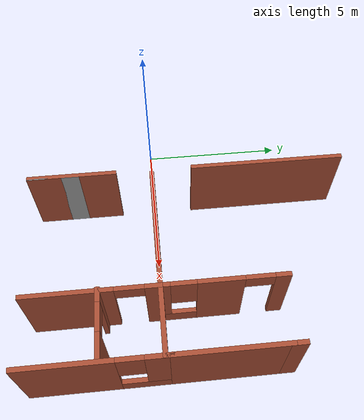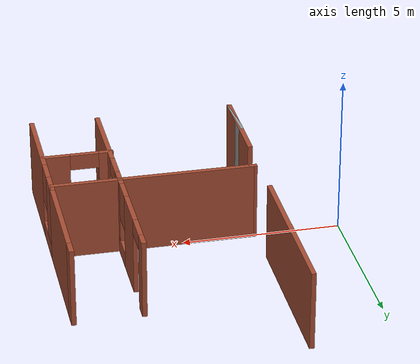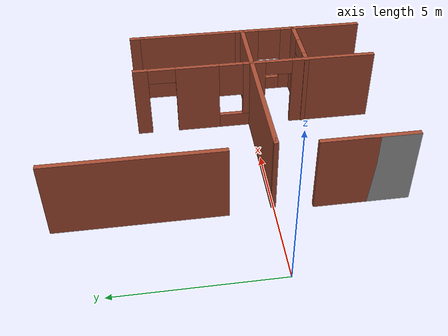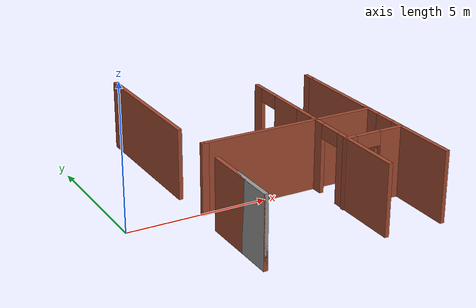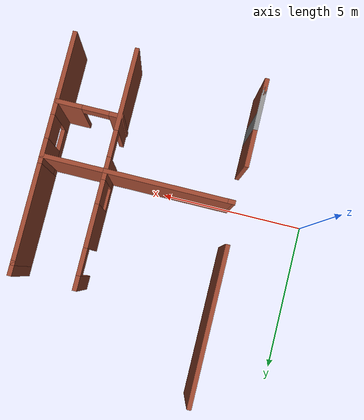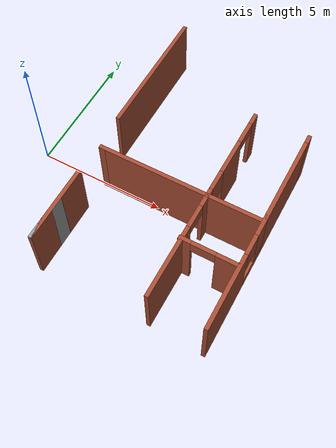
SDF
<sdf version="1.7">
 <model name="my_test_world">
  <link name="Wall_13">
   <pose>9.04901 -1.97818 0 0 -0 1.5708</pose>
   <visual name="Wall_13_Visual_0">
    <pose>-0.820674 0 1.25 0 -0 0</pose>
    <geometry><box><size>2.85865 0.15 2.5</size></box></geometry>
    <material>
     <script><uri>file://media/materials/scripts/gazebo.material</uri><name>Gazebo/Bricks</name></script>
     <ambient>1 1 1 1</ambient>
     <shader type="pixel"/>
    </material>
    <meta><layer>0</layer></meta>
   </visual>
   <visual name="Wall_13_Visual_1">
    <pose>1.42933 0 0.25 0 -0 0</pose>
    <geometry><box><size>1.64135 0.15 0.5</size></box></geometry>
    <material>
     <script><uri>file://media/materials/scripts/gazebo.material</uri><name>Gazebo/Bricks</name></script>
     <ambient>1 1 1 1</ambient>
     <shader type="pixel"/>
    </material>
    <meta><layer>0</layer></meta>
   </visual>
   <visual name="Wall_13_Visual_2">
    <pose>1.82933 0 1.5 0 -0 0</pose>
    <geometry><box><size>0.841349 0.15 2</size></box></geometry>
    <material>
     <script><uri>file://media/materials/scripts/gazebo.material</uri><name>Gazebo/Bricks</name></script>
     <ambient>1 1 1 1</ambient>
     <shader type="pixel"/>
    </material>
    <meta><layer>0</layer></meta>
   </visual>
   <visual name="Wall_13_Visual_3">
    <pose>1.00865 0 1.9 0 -0 0</pose>
    <geometry><box><size>0.8 0.15 1.2</size></box></geometry>
    <material>
     <script><uri>file://media/materials/scripts/gazebo.material</uri><name>Gazebo/Bricks</name></script>
     <ambient>1 1 1 1</ambient>
     <shader type="pixel"/>
    </material>
    <meta><layer>0</layer></meta>
   </visual>
   <collision name="Wall_13_Collision_0">
    <pose>-0.820674 0 1.25 0 -0 0</pose>
    <geometry><box><size>2.85865 0.15 2.5</size></box></geometry>
    <surface>
     <friction>
      <ode><mu>1</mu><mu2>1</mu2><fdir1>0 0 0</fdir1><slip1>0</slip1><slip2>0</slip2></ode>
      <torsional>
       <coefficient>1</coefficient>
       <patch_radius>0</patch_radius>
       <surface_radius>0</surface_radius>
       <use_patch_radius>1</use_patch_radius>
       <ode><slip>0</slip></ode>
      </torsional>
     </friction>
     <bounce><restitution_coefficient>0</restitution_coefficient><threshold>1e+06</threshold></bounce>
     <contact>
      <collide_without_contact>0</collide_without_contact>
      <collide_without_contact_bitmask>1</collide_without_contact_bitmask>
      <collide_bitmask>1</collide_bitmask>
      <ode>
       <soft_cfm>0</soft_cfm>
       <soft_erp>0.2</soft_erp>
       <kp>1e+13</kp>
       <kd>1</kd>
       <max_vel>0.01</max_vel>
       <min_depth>0</min_depth>
      </ode>
      <bullet>
       <split_impulse>1</split_impulse>
       <split_impulse_penetration_threshold>-0.01</split_impulse_penetration_threshold>
       <soft_cfm>0</soft_cfm>
       <soft_erp>0.2</soft_erp>
       <kp>1e+13</kp>
       <kd>1</kd>
      </bullet>
     </contact>
    </surface>
   </collision>
   <collision name="Wall_13_Collision_1">
    <pose>1.42933 0 0.25 0 -0 0</pose>
    <geometry><box><size>1.64135 0.15 0.5</size></box></geometry>
    <surface>
     <friction>
      <ode><mu>1</mu><mu2>1</mu2><fdir1>0 0 0</fdir1><slip1>0</slip1><slip2>0</slip2></ode>
      <torsional>
       <coefficient>1</coefficient>
       <patch_radius>0</patch_radius>
       <surface_radius>0</surface_radius>
       <use_patch_radius>1</use_patch_radius>
       <ode><slip>0</slip></ode>
      </torsional>
     </friction>
     <bounce><restitution_coefficient>0</restitution_coefficient><threshold>1e+06</threshold></bounce>
     <contact>
      <collide_without_contact>0</collide_without_contact>
      <collide_without_contact_bitmask>1</collide_without_contact_bitmask>
      <collide_bitmask>1</collide_bitmask>
      <ode>
       <soft_cfm>0</soft_cfm>
       <soft_erp>0.2</soft_erp>
       <kp>1e+13</kp>
       <kd>1</kd>
       <max_vel>0.01</max_vel>
       <min_depth>0</min_depth>
      </ode>
      <bullet>
       <split_impulse>1</split_impulse>
       <split_impulse_penetration_threshold>-0.01</split_impulse_penetration_threshold>
       <soft_cfm>0</soft_cfm>
       <soft_erp>0.2</soft_erp>
       <kp>1e+13</kp>
       <kd>1</kd>
      </bullet>
     </contact>
    </surface>
   </collision>
   <collision name="Wall_13_Collision_2">
    <pose>1.82933 0 1.5 0 -0 0</pose>
    <geometry><box><size>0.841349 0.15 2</size></box></geometry>
    <surface>
     <friction>
      <ode><mu>1</mu><mu2>1</mu2><fdir1>0 0 0</fdir1><slip1>0</slip1><slip2>0</slip2></ode>
      <torsional>
       <coefficient>1</coefficient>
       <patch_radius>0</patch_radius>
       <surface_radius>0</surface_radius>
       <use_patch_radius>1</use_patch_radius>
       <ode><slip>0</slip></ode>
      </torsional>
     </friction>
     <bounce><restitution_coefficient>0</restitution_coefficient><threshold>1e+06</threshold></bounce>
     <contact>
      <collide_without_contact>0</collide_without_contact>
      <collide_without_contact_bitmask>1</collide_without_contact_bitmask>
      <collide_bitmask>1</collide_bitmask>
      <ode>
       <soft_cfm>0</soft_cfm>
       <soft_erp>0.2</soft_erp>
       <kp>1e+13</kp>
       <kd>1</kd>
       <max_vel>0.01</max_vel>
       <min_depth>0</min_depth>
      </ode>
      <bullet>
       <split_impulse>1</split_impulse>
       <split_impulse_penetration_threshold>-0.01</split_impulse_penetration_threshold>
       <soft_cfm>0</soft_cfm>
       <soft_erp>0.2</soft_erp>
       <kp>1e+13</kp>
       <kd>1</kd>
      </bullet>
     </contact>
    </surface>
   </collision>
   <collision name="Wall_13_Collision_3">
    <pose>1.00865 0 1.9 0 -0 0</pose>
    <geometry><box><size>0.8 0.15 1.2</size></box></geometry>
    <surface>
     <friction>
      <ode><mu>1</mu><mu2>1</mu2><fdir1>0 0 0</fdir1><slip1>0</slip1><slip2>0</slip2></ode>
      <torsional>
       <coefficient>1</coefficient>
       <patch_radius>0</patch_radius>
       <surface_radius>0</surface_radius>
       <use_patch_radius>1</use_patch_radius>
       <ode><slip>0</slip></ode>
      </torsional>
     </friction>
     <bounce><restitution_coefficient>0</restitution_coefficient><threshold>1e+06</threshold></bounce>
     <contact>
      <collide_without_contact>0</collide_without_contact>
      <collide_without_contact_bitmask>1</collide_without_contact_bitmask>
      <collide_bitmask>1</collide_bitmask>
      <ode>
       <soft_cfm>0</soft_cfm>
       <soft_erp>0.2</soft_erp>
       <kp>1e+13</kp>
       <kd>1</kd>
       <max_vel>0.01</max_vel>
       <min_depth>0</min_depth>
      </ode>
      <bullet>
       <split_impulse>1</split_impulse>
       <split_impulse_penetration_threshold>-0.01</split_impulse_penetration_threshold>
       <soft_cfm>0</soft_cfm>
       <soft_erp>0.2</soft_erp>
       <kp>1e+13</kp>
       <kd>1</kd>
      </bullet>
     </contact>
    </surface>
   </collision>
  </link>
  <link name="Wall_21">
   <pose>6.94083 1.93273 0 0 0 -1.5708</pose>
   <visual name="Wall_21_Visual_0">
    <pose>-1.75506 0 1.25 0 -0 0</pose>
    <geometry><box><size>0.489884 0.15 2.5</size></box></geometry>
    <material>
     <script><uri>file://media/materials/scripts/gazebo.material</uri><name>Gazebo/Bricks</name></script>
     <ambient>1 1 1 1</ambient>
     <shader type="pixel"/>
    </material>
    <meta><layer>0</layer></meta>
   </visual>
   <visual name="Wall_21_Visual_1">
    <pose>0.111357 0 1.25 0 -0 0</pose>
    <geometry><box><size>1.44295 0.15 2.5</size></box></geometry>
    <material>
     <script><uri>file://media/materials/scripts/gazebo.material</uri><name>Gazebo/Bricks</name></script>
     <ambient>1 1 1 1</ambient>
     <shader type="pixel"/>
    </material>
    <meta><layer>0</layer></meta>
   </visual>
   <visual name="Wall_21_Visual_2">
    <pose>1.41641 0 0.25 0 -0 0</pose>
    <geometry><box><size>1.16717 0.15 0.5</size></box></geometry>
    <material>
     <script><uri>file://media/materials/scripts/gazebo.material</uri><name>Gazebo/Bricks</name></script>
     <ambient>1 1 1 1</ambient>
     <shader type="pixel"/>
    </material>
    <meta><layer>0</layer></meta>
   </visual>
   <visual name="Wall_21_Visual_3">
    <pose>1.81641 0 1.5 0 -0 0</pose>
    <geometry><box><size>0.367169 0.15 2</size></box></geometry>
    <material>
     <script><uri>file://media/materials/scripts/gazebo.material</uri><name>Gazebo/Bricks</name></script>
     <ambient>1 1 1 1</ambient>
     <shader type="pixel"/>
    </material>
    <meta><layer>0</layer></meta>
   </visual>
   <visual name="Wall_21_Visual_4">
    <pose>1.23283 0 1.9 0 -0 0</pose>
    <geometry><box><size>0.8 0.15 1.2</size></box></geometry>
    <material>
     <script><uri>file://media/materials/scripts/gazebo.material</uri><name>Gazebo/Bricks</name></script>
     <ambient>1 1 1 1</ambient>
     <shader type="pixel"/>
    </material>
    <meta><layer>0</layer></meta>
   </visual>
   <visual name="Wall_21_Visual_5">
    <pose>-1.06012 0 2.25 0 -0 0</pose>
    <geometry><box><size>0.9 0.15 0.5</size></box></geometry>
    <material>
     <script><uri>file://media/materials/scripts/gazebo.material</uri><name>Gazebo/Bricks</name></script>
     <ambient>1 1 1 1</ambient>
     <shader type="pixel"/>
    </material>
    <meta><layer>0</layer></meta>
   </visual>
   <collision name="Wall_21_Collision_0">
    <pose>-1.75506 0 1.25 0 -0 0</pose>
    <geometry><box><size>0.489884 0.15 2.5</size></box></geometry>
    <surface>
     <friction>
      <ode><mu>1</mu><mu2>1</mu2><fdir1>0 0 0</fdir1><slip1>0</slip1><slip2>0</slip2></ode>
      <torsional>
       <coefficient>1</coefficient>
       <patch_radius>0</patch_radius>
       <surface_radius>0</surface_radius>
       <use_patch_radius>1</use_patch_radius>
       <ode><slip>0</slip></ode>
      </torsional>
     </friction>
     <bounce><restitution_coefficient>0</restitution_coefficient><threshold>1e+06</threshold></bounce>
     <contact>
      <collide_without_contact>0</collide_without_contact>
      <collide_without_contact_bitmask>1</collide_without_contact_bitmask>
      <collide_bitmask>1</collide_bitmask>
      <ode>
       <soft_cfm>0</soft_cfm>
       <soft_erp>0.2</soft_erp>
       <kp>1e+13</kp>
       <kd>1</kd>
       <max_vel>0.01</max_vel>
       <min_depth>0</min_depth>
      </ode>
      <bullet>
       <split_impulse>1</split_impulse>
       <split_impulse_penetration_threshold>-0.01</split_impulse_penetration_threshold>
       <soft_cfm>0</soft_cfm>
       <soft_erp>0.2</soft_erp>
       <kp>1e+13</kp>
       <kd>1</kd>
      </bullet>
     </contact>
    </surface>
   </collision>
   <collision name="Wall_21_Collision_1">
    <pose>0.111357 0 1.25 0 -0 0</pose>
    <geometry><box><size>1.44295 0.15 2.5</size></box></geometry>
    <surface>
     <friction>
      <ode><mu>1</mu><mu2>1</mu2><fdir1>0 0 0</fdir1><slip1>0</slip1><slip2>0</slip2></ode>
      <torsional>
       <coefficient>1</coefficient>
       <patch_radius>0</patch_radius>
       <surface_radius>0</surface_radius>
       <use_patch_radius>1</use_patch_radius>
       <ode><slip>0</slip></ode>
      </torsional>
     </friction>
     <bounce><restitution_coefficient>0</restitution_coefficient><threshold>1e+06</threshold></bounce>
     <contact>
      <collide_without_contact>0</collide_without_contact>
      <collide_without_contact_bitmask>1</collide_without_contact_bitmask>
      <collide_bitmask>1</collide_bitmask>
      <ode>
       <soft_cfm>0</soft_cfm>
       <soft_erp>0.2</soft_erp>
       <kp>1e+13</kp>
       <kd>1</kd>
       <max_vel>0.01</max_vel>
       <min_depth>0</min_depth>
      </ode>
      <bullet>
       <split_impulse>1</split_impulse>
       <split_impulse_penetration_threshold>-0.01</split_impulse_penetration_threshold>
       <soft_cfm>0</soft_cfm>
       <soft_erp>0.2</soft_erp>
       <kp>1e+13</kp>
       <kd>1</kd>
      </bullet>
     </contact>
    </surface>
   </collision>
   <collision name="Wall_21_Collision_2">
    <pose>1.41641 0 0.25 0 -0 0</pose>
    <geometry><box><size>1.16717 0.15 0.5</size></box></geometry>
    <surface>
     <friction>
      <ode><mu>1</mu><mu2>1</mu2><fdir1>0 0 0</fdir1><slip1>0</slip1><slip2>0</slip2></ode>
      <torsional>
       <coefficient>1</coefficient>
       <patch_radius>0</patch_radius>
       <surface_radius>0</surface_radius>
       <use_patch_radius>1</use_patch_radius>
       <ode><slip>0</slip></ode>
      </torsional>
     </friction>
     <bounce><restitution_coefficient>0</restitution_coefficient><threshold>1e+06</threshold></bounce>
     <contact>
      <collide_without_contact>0</collide_without_contact>
      <collide_without_contact_bitmask>1</collide_without_contact_bitmask>
      <collide_bitmask>1</collide_bitmask>
      <ode>
       <soft_cfm>0</soft_cfm>
       <soft_erp>0.2</soft_erp>
       <kp>1e+13</kp>
       <kd>1</kd>
       <max_vel>0.01</max_vel>
       <min_depth>0</min_depth>
      </ode>
      <bullet>
       <split_impulse>1</split_impulse>
       <split_impulse_penetration_threshold>-0.01</split_impulse_penetration_threshold>
       <soft_cfm>0</soft_cfm>
       <soft_erp>0.2</soft_erp>
       <kp>1e+13</kp>
       <kd>1</kd>
      </bullet>
     </contact>
    </surface>
   </collision>
   <collision name="Wall_21_Collision_3">
    <pose>1.81641 0 1.5 0 -0 0</pose>
    <geometry><box><size>0.367169 0.15 2</size></box></geometry>
    <surface>
     <friction>
      <ode><mu>1</mu><mu2>1</mu2><fdir1>0 0 0</fdir1><slip1>0</slip1><slip2>0</slip2></ode>
      <torsional>
       <coefficient>1</coefficient>
       <patch_radius>0</patch_radius>
       <surface_radius>0</surface_radius>
       <use_patch_radius>1</use_patch_radius>
       <ode><slip>0</slip></ode>
      </torsional>
     </friction>
     <bounce><restitution_coefficient>0</restitution_coefficient><threshold>1e+06</threshold></bounce>
     <contact>
      <collide_without_contact>0</collide_without_contact>
      <collide_without_contact_bitmask>1</collide_without_contact_bitmask>
      <collide_bitmask>1</collide_bitmask>
      <ode>
       <soft_cfm>0</soft_cfm>
       <soft_erp>0.2</soft_erp>
       <kp>1e+13</kp>
       <kd>1</kd>
       <max_vel>0.01</max_vel>
       <min_depth>0</min_depth>
      </ode>
      <bullet>
       <split_impulse>1</split_impulse>
       <split_impulse_penetration_threshold>-0.01</split_impulse_penetration_threshold>
       <soft_cfm>0</soft_cfm>
       <soft_erp>0.2</soft_erp>
       <kp>1e+13</kp>
       <kd>1</kd>
      </bullet>
     </contact>
    </surface>
   </collision>
   <collision name="Wall_21_Collision_4">
    <pose>1.23283 0 1.9 0 -0 0</pose>
    <geometry><box><size>0.8 0.15 1.2</size></box></geometry>
    <surface>
     <friction>
      <ode><mu>1</mu><mu2>1</mu2><fdir1>0 0 0</fdir1><slip1>0</slip1><slip2>0</slip2></ode>
      <torsional>
       <coefficient>1</coefficient>
       <patch_radius>0</patch_radius>
       <surface_radius>0</surface_radius>
       <use_patch_radius>1</use_patch_radius>
       <ode><slip>0</slip></ode>
      </torsional>
     </friction>
     <bounce><restitution_coefficient>0</restitution_coefficient><threshold>1e+06</threshold></bounce>
     <contact>
      <collide_without_contact>0</collide_without_contact>
      <collide_without_contact_bitmask>1</collide_without_contact_bitmask>
      <collide_bitmask>1</collide_bitmask>
      <ode>
       <soft_cfm>0</soft_cfm>
       <soft_erp>0.2</soft_erp>
       <kp>1e+13</kp>
       <kd>1</kd>
       <max_vel>0.01</max_vel>
       <min_depth>0</min_depth>
      </ode>
      <bullet>
       <split_impulse>1</split_impulse>
       <split_impulse_penetration_threshold>-0.01</split_impulse_penetration_threshold>
       <soft_cfm>0</soft_cfm>
       <soft_erp>0.2</soft_erp>
       <kp>1e+13</kp>
       <kd>1</kd>
      </bullet>
     </contact>
    </surface>
   </collision>
   <collision name="Wall_21_Collision_5">
    <pose>-1.06012 0 2.25 0 -0 0</pose>
    <geometry><box><size>0.9 0.15 0.5</size></box></geometry>
    <surface>
     <friction>
      <ode><mu>1</mu><mu2>1</mu2><fdir1>0 0 0</fdir1><slip1>0</slip1><slip2>0</slip2></ode>
      <torsional>
       <coefficient>1</coefficient>
       <patch_radius>0</patch_radius>
       <surface_radius>0</surface_radius>
       <use_patch_radius>1</use_patch_radius>
       <ode><slip>0</slip></ode>
      </torsional>
     </friction>
     <bounce><restitution_coefficient>0</restitution_coefficient><threshold>1e+06</threshold></bounce>
     <contact>
      <collide_without_contact>0</collide_without_contact>
      <collide_without_contact_bitmask>1</collide_without_contact_bitmask>
      <collide_bitmask>1</collide_bitmask>
      <ode>
       <soft_cfm>0</soft_cfm>
       <soft_erp>0.2</soft_erp>
       <kp>1e+13</kp>
       <kd>1</kd>
       <max_vel>0.01</max_vel>
       <min_depth>0</min_depth>
      </ode>
      <bullet>
       <split_impulse>1</split_impulse>
       <split_impulse_penetration_threshold>-0.01</split_impulse_penetration_threshold>
       <soft_cfm>0</soft_cfm>
       <soft_erp>0.2</soft_erp>
       <kp>1e+13</kp>
       <kd>1</kd>
      </bullet>
     </contact>
    </surface>
   </collision>
  </link>
  <link name="Wall_22">
   <pose>7.99083 0.007727 0 0 -0 0</pose>
   <visual name="Wall_22_Visual">
    <pose>0 0 1.25 0 -0 0</pose>
    <geometry><box><size>2.25 0.15 2.5</size></box></geometry>
    <material>
     <script><uri>file://media/materials/scripts/gazebo.material</uri><name>Gazebo/Bricks</name></script>
     <ambient>1 1 1 1</ambient>
     <shader type="pixel"/>
    </material>
    <meta><layer>0</layer></meta>
   </visual>
   <collision name="Wall_22_Collision">
    <pose>0 0 1.25 0 -0 0</pose>
    <geometry><box><size>2.25 0.15 2.5</size></box></geometry>
    <surface>
     <friction>
      <ode><mu>1</mu><mu2>1</mu2><fdir1>0 0 0</fdir1><slip1>0</slip1><slip2>0</slip2></ode>
      <torsional>
       <coefficient>1</coefficient>
       <patch_radius>0</patch_radius>
       <surface_radius>0</surface_radius>
       <use_patch_radius>1</use_patch_radius>
       <ode><slip>0</slip></ode>
      </torsional>
     </friction>
     <bounce><restitution_coefficient>0</restitution_coefficient><threshold>1e+06</threshold></bounce>
     <contact>
      <collide_without_contact>0</collide_without_contact>
      <collide_without_contact_bitmask>1</collide_without_contact_bitmask>
      <collide_bitmask>1</collide_bitmask>
      <ode>
       <soft_cfm>0</soft_cfm>
       <soft_erp>0.2</soft_erp>
       <kp>1e+13</kp>
       <kd>1</kd>
       <max_vel>0.01</max_vel>
       <min_depth>0</min_depth>
      </ode>
      <bullet>
       <split_impulse>1</split_impulse>
       <split_impulse_penetration_threshold>-0.01</split_impulse_penetration_threshold>
       <soft_cfm>0</soft_cfm>
       <soft_erp>0.2</soft_erp>
       <kp>1e+13</kp>
       <kd>1</kd>
      </bullet>
     </contact>
    </surface>
   </collision>
  </link>
  <link name="Wall_30">
   <pose>6.94083 -2.04227 0 0 0 -1.5708</pose>
   <visual name="Wall_30_Visual_0">
    <pose>-1.85404 0 1.25 0 -0 0</pose>
    <geometry><box><size>0.541917 0.15 2.5</size></box></geometry>
    <material>
     <script><uri>file://media/materials/scripts/gazebo.material</uri><name>Gazebo/Bricks</name></script>
     <ambient>1 1 1 1</ambient>
     <shader type="pixel"/>
    </material>
    <meta><layer>0</layer></meta>
   </visual>
   <visual name="Wall_30_Visual_1">
    <pose>0.720958 0 1.25 0 -0 0</pose>
    <geometry><box><size>2.80808 0.15 2.5</size></box></geometry>
    <material>
     <script><uri>file://media/materials/scripts/gazebo.material</uri><name>Gazebo/Bricks</name></script>
     <ambient>1 1 1 1</ambient>
     <shader type="pixel"/>
    </material>
    <meta><layer>0</layer></meta>
   </visual>
   <visual name="Wall_30_Visual_2">
    <pose>-1.13308 0 2.25 0 -0 0</pose>
    <geometry><box><size>0.9 0.15 0.5</size></box></geometry>
    <material>
     <script><uri>file://media/materials/scripts/gazebo.material</uri><name>Gazebo/Bricks</name></script>
     <ambient>1 1 1 1</ambient>
     <shader type="pixel"/>
    </material>
    <meta><layer>0</layer></meta>
   </visual>
   <collision name="Wall_30_Collision_0">
    <pose>-1.85404 0 1.25 0 -0 0</pose>
    <geometry><box><size>0.541917 0.15 2.5</size></box></geometry>
    <surface>
     <friction>
      <ode><mu>1</mu><mu2>1</mu2><fdir1>0 0 0</fdir1><slip1>0</slip1><slip2>0</slip2></ode>
      <torsional>
       <coefficient>1</coefficient>
       <patch_radius>0</patch_radius>
       <surface_radius>0</surface_radius>
       <use_patch_radius>1</use_patch_radius>
       <ode><slip>0</slip></ode>
      </torsional>
     </friction>
     <bounce><restitution_coefficient>0</restitution_coefficient><threshold>1e+06</threshold></bounce>
     <contact>
      <collide_without_contact>0</collide_without_contact>
      <collide_without_contact_bitmask>1</collide_without_contact_bitmask>
      <collide_bitmask>1</collide_bitmask>
      <ode>
       <soft_cfm>0</soft_cfm>
       <soft_erp>0.2</soft_erp>
       <kp>1e+13</kp>
       <kd>1</kd>
       <max_vel>0.01</max_vel>
       <min_depth>0</min_depth>
      </ode>
      <bullet>
       <split_impulse>1</split_impulse>
       <split_impulse_penetration_threshold>-0.01</split_impulse_penetration_threshold>
       <soft_cfm>0</soft_cfm>
       <soft_erp>0.2</soft_erp>
       <kp>1e+13</kp>
       <kd>1</kd>
      </bullet>
     </contact>
    </surface>
   </collision>
   <collision name="Wall_30_Collision_1">
    <pose>0.720958 0 1.25 0 -0 0</pose>
    <geometry><box><size>2.80808 0.15 2.5</size></box></geometry>
    <surface>
     <friction>
      <ode><mu>1</mu><mu2>1</mu2><fdir1>0 0 0</fdir1><slip1>0</slip1><slip2>0</slip2></ode>
      <torsional>
       <coefficient>1</coefficient>
       <patch_radius>0</patch_radius>
       <surface_radius>0</surface_radius>
       <use_patch_radius>1</use_patch_radius>
       <ode><slip>0</slip></ode>
      </torsional>
     </friction>
     <bounce><restitution_coefficient>0</restitution_coefficient><threshold>1e+06</threshold></bounce>
     <contact>
      <collide_without_contact>0</collide_without_contact>
      <collide_without_contact_bitmask>1</collide_without_contact_bitmask>
      <collide_bitmask>1</collide_bitmask>
      <ode>
       <soft_cfm>0</soft_cfm>
       <soft_erp>0.2</soft_erp>
       <kp>1e+13</kp>
       <kd>1</kd>
       <max_vel>0.01</max_vel>
       <min_depth>0</min_depth>
      </ode>
      <bullet>
       <split_impulse>1</split_impulse>
       <split_impulse_penetration_threshold>-0.01</split_impulse_penetration_threshold>
       <soft_cfm>0</soft_cfm>
       <soft_erp>0.2</soft_erp>
       <kp>1e+13</kp>
       <kd>1</kd>
      </bullet>
     </contact>
    </surface>
   </collision>
   <collision name="Wall_30_Collision_2">
    <pose>-1.13308 0 2.25 0 -0 0</pose>
    <geometry><box><size>0.9 0.15 0.5</size></box></geometry>
    <surface>
     <friction>
      <ode><mu>1</mu><mu2>1</mu2><fdir1>0 0 0</fdir1><slip1>0</slip1><slip2>0</slip2></ode>
      <torsional>
       <coefficient>1</coefficient>
       <patch_radius>0</patch_radius>
       <surface_radius>0</surface_radius>
       <use_patch_radius>1</use_patch_radius>
       <ode><slip>0</slip></ode>
      </torsional>
     </friction>
     <bounce><restitution_coefficient>0</restitution_coefficient><threshold>1e+06</threshold></bounce>
     <contact>
      <collide_without_contact>0</collide_without_contact>
      <collide_without_contact_bitmask>1</collide_without_contact_bitmask>
      <collide_bitmask>1</collide_bitmask>
      <ode>
       <soft_cfm>0</soft_cfm>
       <soft_erp>0.2</soft_erp>
       <kp>1e+13</kp>
       <kd>1</kd>
       <max_vel>0.01</max_vel>
       <min_depth>0</min_depth>
      </ode>
      <bullet>
       <split_impulse>1</split_impulse>
       <split_impulse_penetration_threshold>-0.01</split_impulse_penetration_threshold>
       <soft_cfm>0</soft_cfm>
       <soft_erp>0.2</soft_erp>
       <kp>1e+13</kp>
       <kd>1</kd>
      </bullet>
     </contact>
    </surface>
   </collision>
  </link>
  <link name="Wall_32">
   <pose>7.9506 -1.83441 0 0 -0 0</pose>
   <visual name="Wall_32_Visual_0">
    <pose>-0.890115 0 1.25 0 -0 0</pose>
    <geometry><box><size>0.46977 0.15 2.5</size></box></geometry>
    <material>
     <script><uri>file://media/materials/scripts/gazebo.material</uri><name>Gazebo/Bricks</name></script>
     <ambient>1 1 1 1</ambient>
     <shader type="pixel"/>
    </material>
    <meta><layer>0</layer></meta>
   </visual>
   <visual name="Wall_32_Visual_1">
    <pose>0.684885 0 1.25 0 -0 0</pose>
    <geometry><box><size>0.88023 0.15 2.5</size></box></geometry>
    <material>
     <script><uri>file://media/materials/scripts/gazebo.material</uri><name>Gazebo/Bricks</name></script>
     <ambient>1 1 1 1</ambient>
     <shader type="pixel"/>
    </material>
    <meta><layer>0</layer></meta>
   </visual>
   <visual name="Wall_32_Visual_2">
    <pose>-0.20523 0 2.25 0 -0 0</pose>
    <geometry><box><size>0.9 0.15 0.5</size></box></geometry>
    <material>
     <script><uri>file://media/materials/scripts/gazebo.material</uri><name>Gazebo/Bricks</name></script>
     <ambient>1 1 1 1</ambient>
     <shader type="pixel"/>
    </material>
    <meta><layer>0</layer></meta>
   </visual>
   <collision name="Wall_32_Collision_0">
    <pose>-0.890115 0 1.25 0 -0 0</pose>
    <geometry><box><size>0.46977 0.15 2.5</size></box></geometry>
    <surface>
     <friction>
      <ode><mu>1</mu><mu2>1</mu2><fdir1>0 0 0</fdir1><slip1>0</slip1><slip2>0</slip2></ode>
      <torsional>
       <coefficient>1</coefficient>
       <patch_radius>0</patch_radius>
       <surface_radius>0</surface_radius>
       <use_patch_radius>1</use_patch_radius>
       <ode><slip>0</slip></ode>
      </torsional>
     </friction>
     <bounce><restitution_coefficient>0</restitution_coefficient><threshold>1e+06</threshold></bounce>
     <contact>
      <collide_without_contact>0</collide_without_contact>
      <collide_without_contact_bitmask>1</collide_without_contact_bitmask>
      <collide_bitmask>1</collide_bitmask>
      <ode>
       <soft_cfm>0</soft_cfm>
       <soft_erp>0.2</soft_erp>
       <kp>1e+13</kp>
       <kd>1</kd>
       <max_vel>0.01</max_vel>
       <min_depth>0</min_depth>
      </ode>
      <bullet>
       <split_impulse>1</split_impulse>
       <split_impulse_penetration_threshold>-0.01</split_impulse_penetration_threshold>
       <soft_cfm>0</soft_cfm>
       <soft_erp>0.2</soft_erp>
       <kp>1e+13</kp>
       <kd>1</kd>
      </bullet>
     </contact>
    </surface>
   </collision>
   <collision name="Wall_32_Collision_1">
    <pose>0.684885 0 1.25 0 -0 0</pose>
    <geometry><box><size>0.88023 0.15 2.5</size></box></geometry>
    <surface>
     <friction>
      <ode><mu>1</mu><mu2>1</mu2><fdir1>0 0 0</fdir1><slip1>0</slip1><slip2>0</slip2></ode>
      <torsional>
       <coefficient>1</coefficient>
       <patch_radius>0</patch_radius>
       <surface_radius>0</surface_radius>
       <use_patch_radius>1</use_patch_radius>
       <ode><slip>0</slip></ode>
      </torsional>
     </friction>
     <bounce><restitution_coefficient>0</restitution_coefficient><threshold>1e+06</threshold></bounce>
     <contact>
      <collide_without_contact>0</collide_without_contact>
      <collide_without_contact_bitmask>1</collide_without_contact_bitmask>
      <collide_bitmask>1</collide_bitmask>
      <ode>
       <soft_cfm>0</soft_cfm>
       <soft_erp>0.2</soft_erp>
       <kp>1e+13</kp>
       <kd>1</kd>
       <max_vel>0.01</max_vel>
       <min_depth>0</min_depth>
      </ode>
      <bullet>
       <split_impulse>1</split_impulse>
       <split_impulse_penetration_threshold>-0.01</split_impulse_penetration_threshold>
       <soft_cfm>0</soft_cfm>
       <soft_erp>0.2</soft_erp>
       <kp>1e+13</kp>
       <kd>1</kd>
      </bullet>
     </contact>
    </surface>
   </collision>
   <collision name="Wall_32_Collision_2">
    <pose>-0.20523 0 2.25 0 -0 0</pose>
    <geometry><box><size>0.9 0.15 0.5</size></box></geometry>
    <surface>
     <friction>
      <ode><mu>1</mu><mu2>1</mu2><fdir1>0 0 0</fdir1><slip1>0</slip1><slip2>0</slip2></ode>
      <torsional>
       <coefficient>1</coefficient>
       <patch_radius>0</patch_radius>
       <surface_radius>0</surface_radius>
       <use_patch_radius>1</use_patch_radius>
       <ode><slip>0</slip></ode>
      </torsional>
     </friction>
     <bounce><restitution_coefficient>0</restitution_coefficient><threshold>1e+06</threshold></bounce>
     <contact>
      <collide_without_contact>0</collide_without_contact>
      <collide_without_contact_bitmask>1</collide_without_contact_bitmask>
      <collide_bitmask>1</collide_bitmask>
      <ode>
       <soft_cfm>0</soft_cfm>
       <soft_erp>0.2</soft_erp>
       <kp>1e+13</kp>
       <kd>1</kd>
       <max_vel>0.01</max_vel>
       <min_depth>0</min_depth>
      </ode>
      <bullet>
       <split_impulse>1</split_impulse>
       <split_impulse_penetration_threshold>-0.01</split_impulse_penetration_threshold>
       <soft_cfm>0</soft_cfm>
       <soft_erp>0.2</soft_erp>
       <kp>1e+13</kp>
       <kd>1</kd>
      </bullet>
     </contact>
    </surface>
   </collision>
  </link>
  <link name="Wall_36">
   <pose>4.89083 0.007727 0 0 -0 3.14159</pose>
   <visual name="Wall_36_Visual">
    <pose>0 0 1.25 0 -0 0</pose>
    <geometry><box><size>4.25 0.15 2.5</size></box></geometry>
    <material>
     <script><uri>file://media/materials/scripts/gazebo.material</uri><name>Gazebo/Bricks</name></script>
     <ambient>0.921569 0.807843 0.615686 1</ambient>
     <shader type="pixel"/>
    </material>
    <meta><layer>0</layer></meta>
   </visual>
   <collision name="Wall_36_Collision">
    <pose>0 0 1.25 0 -0 0</pose>
    <geometry><box><size>4.25 0.15 2.5</size></box></geometry>
    <surface>
     <friction>
      <ode><mu>1</mu><mu2>1</mu2><fdir1>0 0 0</fdir1><slip1>0</slip1><slip2>0</slip2></ode>
      <torsional>
       <coefficient>1</coefficient>
       <patch_radius>0</patch_radius>
       <surface_radius>0</surface_radius>
       <use_patch_radius>1</use_patch_radius>
       <ode><slip>0</slip></ode>
      </torsional>
     </friction>
     <bounce><restitution_coefficient>0</restitution_coefficient><threshold>1e+06</threshold></bounce>
     <contact>
      <collide_without_contact>0</collide_without_contact>
      <collide_without_contact_bitmask>1</collide_without_contact_bitmask>
      <collide_bitmask>1</collide_bitmask>
      <ode>
       <soft_cfm>0</soft_cfm>
       <soft_erp>0.2</soft_erp>
       <kp>1e+13</kp>
       <kd>1</kd>
       <max_vel>0.01</max_vel>
       <min_depth>0</min_depth>
      </ode>
      <bullet>
       <split_impulse>1</split_impulse>
       <split_impulse_penetration_threshold>-0.01</split_impulse_penetration_threshold>
       <soft_cfm>0</soft_cfm>
       <soft_erp>0.2</soft_erp>
       <kp>1e+13</kp>
       <kd>1</kd>
      </bullet>
     </contact>
    </surface>
   </collision>
  </link>
  <link name="Wall_67">
   <pose>2.59313 -3.31827 0 0 0 -1.5708</pose>
   <visual name="Wall_67_Visual">
    <pose>0 0 1.25 0 -0 0</pose>
    <geometry><box><size>1.75 0.15 2.5</size></box></geometry>
    <material>
     <script><uri>file://media/materials/scripts/gazebo.material</uri><name>Gazebo/Grey</name></script>
     <ambient>1 1 1 1</ambient>
     <shader type="pixel"/>
    </material>
    <meta><layer>0</layer></meta>
   </visual>
   <collision name="Wall_67_Collision">
    <pose>0 0 1.25 0 -0 0</pose>
    <geometry><box><size>1.75 0.15 2.5</size></box></geometry>
    <surface>
     <friction>
      <ode><mu>1</mu><mu2>1</mu2><fdir1>0 0 0</fdir1><slip1>0</slip1><slip2>0</slip2></ode>
      <torsional>
       <coefficient>1</coefficient>
       <patch_radius>0</patch_radius>
       <surface_radius>0</surface_radius>
       <use_patch_radius>1</use_patch_radius>
       <ode><slip>0</slip></ode>
      </torsional>
     </friction>
     <bounce><restitution_coefficient>0</restitution_coefficient><threshold>1e+06</threshold></bounce>
     <contact>
      <collide_without_contact>0</collide_without_contact>
      <collide_without_contact_bitmask>1</collide_without_contact_bitmask>
      <collide_bitmask>1</collide_bitmask>
      <ode>
       <soft_cfm>0</soft_cfm>
       <soft_erp>0.2</soft_erp>
       <kp>1e+13</kp>
       <kd>1</kd>
       <max_vel>0.01</max_vel>
       <min_depth>0</min_depth>
      </ode>
      <bullet>
       <split_impulse>1</split_impulse>
       <split_impulse_penetration_threshold>-0.01</split_impulse_penetration_threshold>
       <soft_cfm>0</soft_cfm>
       <soft_erp>0.2</soft_erp>
       <kp>1e+13</kp>
       <kd>1</kd>
      </bullet>
     </contact>
    </surface>
   </collision>
  </link>
  <link name="Wall_68">
   <pose>2.59313 -2.69327 0 0 -0 1.5708</pose>
   <visual name="Wall_68_Visual">
    <pose>0 0 1.25 0 -0 0</pose>
    <geometry><box><size>3 0.15 2.5</size></box></geometry>
    <material>
     <script><uri>file://media/materials/scripts/gazebo.material</uri><name>Gazebo/Bricks</name></script>
     <ambient>1 1 1 1</ambient>
     <shader type="pixel"/>
    </material>
    <meta><layer>0</layer></meta>
   </visual>
   <collision name="Wall_68_Collision">
    <pose>0 0 1.25 0 -0 0</pose>
    <geometry><box><size>3 0.15 2.5</size></box></geometry>
    <surface>
     <friction>
      <ode><mu>1</mu><mu2>1</mu2><fdir1>0 0 0</fdir1><slip1>0</slip1><slip2>0</slip2></ode>
      <torsional>
       <coefficient>1</coefficient>
       <patch_radius>0</patch_radius>
       <surface_radius>0</surface_radius>
       <use_patch_radius>1</use_patch_radius>
       <ode><slip>0</slip></ode>
      </torsional>
     </friction>
     <bounce><restitution_coefficient>0</restitution_coefficient><threshold>1e+06</threshold></bounce>
     <contact>
      <collide_without_contact>0</collide_without_contact>
      <collide_without_contact_bitmask>1</collide_without_contact_bitmask>
      <collide_bitmask>1</collide_bitmask>
      <ode>
       <soft_cfm>0</soft_cfm>
       <soft_erp>0.2</soft_erp>
       <kp>1e+13</kp>
       <kd>1</kd>
       <max_vel>0.01</max_vel>
       <min_depth>0</min_depth>
      </ode>
      <bullet>
       <split_impulse>1</split_impulse>
       <split_impulse_penetration_threshold>-0.01</split_impulse_penetration_threshold>
       <soft_cfm>0</soft_cfm>
       <soft_erp>0.2</soft_erp>
       <kp>1e+13</kp>
       <kd>1</kd>
      </bullet>
     </contact>
    </surface>
   </collision>
  </link>
  <link name="Wall_7">
   <pose>9.04901 1.87182 0 0 -0 1.5708</pose>
   <visual name="Wall_7_Visual">
    <pose>0 0 1.25 0 -0 0</pose>
    <geometry><box><size>3.5 0.15 2.5</size></box></geometry>
    <material>
     <script><uri>file://media/materials/scripts/gazebo.material</uri><name>Gazebo/Bricks</name></script>
     <ambient>1 1 1 1</ambient>
     <shader type="pixel"/>
    </material>
    <meta><layer>0</layer></meta>
   </visual>
   <collision name="Wall_7_Collision">
    <pose>0 0 1.25 0 -0 0</pose>
    <geometry><box><size>3.5 0.15 2.5</size></box></geometry>
    <surface>
     <friction>
      <ode><mu>1</mu><mu2>1</mu2><fdir1>0 0 0</fdir1><slip1>0</slip1><slip2>0</slip2></ode>
      <torsional>
       <coefficient>1</coefficient>
       <patch_radius>0</patch_radius>
       <surface_radius>0</surface_radius>
       <use_patch_radius>1</use_patch_radius>
       <ode><slip>0</slip></ode>
      </torsional>
     </friction>
     <bounce><restitution_coefficient>0</restitution_coefficient><threshold>1e+06</threshold></bounce>
     <contact>
      <collide_without_contact>0</collide_without_contact>
      <collide_without_contact_bitmask>1</collide_without_contact_bitmask>
      <collide_bitmask>1</collide_bitmask>
      <ode>
       <soft_cfm>0</soft_cfm>
       <soft_erp>0.2</soft_erp>
       <kp>1e+13</kp>
       <kd>1</kd>
       <max_vel>0.01</max_vel>
       <min_depth>0</min_depth>
      </ode>
      <bullet>
       <split_impulse>1</split_impulse>
       <split_impulse_penetration_threshold>-0.01</split_impulse_penetration_threshold>
       <soft_cfm>0</soft_cfm>
       <soft_erp>0.2</soft_erp>
       <kp>1e+13</kp>
       <kd>1</kd>
      </bullet>
     </contact>
    </surface>
   </collision>
  </link>
  <link name="Wall_70">
   <pose>2.59312 3.97813 0 0 -0 1.5708</pose>
   <visual name="Wall_70_Visual">
    <pose>0 0 1.25 0 -0 0</pose>
    <geometry><box><size>5.25 0.15 2.5</size></box></geometry>
    <material>
     <script><uri>file://media/materials/scripts/gazebo.material</uri><name>Gazebo/Bricks</name></script>
     <ambient>1 1 1 1</ambient>
     <shader type="pixel"/>
    </material>
    <meta><layer>0</layer></meta>
   </visual>
   <collision name="Wall_70_Collision">
    <pose>0 0 1.25 0 -0 0</pose>
    <geometry><box><size>5.25 0.15 2.5</size></box></geometry>
    <surface>
     <friction>
      <ode><mu>1</mu><mu2>1</mu2><fdir1>0 0 0</fdir1><slip1>0</slip1><slip2>0</slip2></ode>
      <torsional>
       <coefficient>1</coefficient>
       <patch_radius>0</patch_radius>
       <surface_radius>0</surface_radius>
       <use_patch_radius>1</use_patch_radius>
       <ode><slip>0</slip></ode>
      </torsional>
     </friction>
     <bounce><restitution_coefficient>0</restitution_coefficient><threshold>1e+06</threshold></bounce>
     <contact>
      <collide_without_contact>0</collide_without_contact>
      <collide_without_contact_bitmask>1</collide_without_contact_bitmask>
      <collide_bitmask>1</collide_bitmask>
      <ode>
       <soft_cfm>0</soft_cfm>
       <soft_erp>0.2</soft_erp>
       <kp>1e+13</kp>
       <kd>1</kd>
       <max_vel>0.01</max_vel>
       <min_depth>0</min_depth>
      </ode>
      <bullet>
       <split_impulse>1</split_impulse>
       <split_impulse_penetration_threshold>-0.01</split_impulse_penetration_threshold>
       <soft_cfm>0</soft_cfm>
       <soft_erp>0.2</soft_erp>
       <kp>1e+13</kp>
       <kd>1</kd>
      </bullet>
     </contact>
    </surface>
   </collision>
  </link>
  <link name="Wall_72">
   <pose>2.79083 0.007727 0 0 -0 3.14159</pose>
   <visual name="Wall_72_Visual">
    <pose>0 0 1.25 0 -0 0</pose>
    <geometry><box><size>0.25 0.15 2.5</size></box></geometry>
    <material>
     <script><uri>file://media/materials/scripts/gazebo.material</uri><name>Gazebo/Bricks</name></script>
     <ambient>1 1 1 1</ambient>
     <shader type="pixel"/>
    </material>
    <meta><layer>0</layer></meta>
   </visual>
   <collision name="Wall_72_Collision">
    <pose>0 0 1.25 0 -0 0</pose>
    <geometry><box><size>0.25 0.15 2.5</size></box></geometry>
    <surface>
     <friction>
      <ode><mu>1</mu><mu2>1</mu2><fdir1>0 0 0</fdir1><slip1>0</slip1><slip2>0</slip2></ode>
      <torsional>
       <coefficient>1</coefficient>
       <patch_radius>0</patch_radius>
       <surface_radius>0</surface_radius>
       <use_patch_radius>1</use_patch_radius>
       <ode><slip>0</slip></ode>
      </torsional>
     </friction>
     <bounce><restitution_coefficient>0</restitution_coefficient><threshold>1e+06</threshold></bounce>
     <contact>
      <collide_without_contact>0</collide_without_contact>
      <collide_without_contact_bitmask>1</collide_without_contact_bitmask>
      <collide_bitmask>1</collide_bitmask>
      <ode>
       <soft_cfm>0</soft_cfm>
       <soft_erp>0.2</soft_erp>
       <kp>1e+13</kp>
       <kd>1</kd>
       <max_vel>0.01</max_vel>
       <min_depth>0</min_depth>
      </ode>
      <bullet>
       <split_impulse>1</split_impulse>
       <split_impulse_penetration_threshold>-0.01</split_impulse_penetration_threshold>
       <soft_cfm>0</soft_cfm>
       <soft_erp>0.2</soft_erp>
       <kp>1e+13</kp>
       <kd>1</kd>
      </bullet>
     </contact>
    </surface>
   </collision>
  </link>
  <link name="Wall_8">
   <pose>9.04901 3.72182 0 0 -0 1.5708</pose>
   <visual name="Wall_8_Visual">
    <pose>0 0 1.25 0 -0 0</pose>
    <geometry><box><size>0.5 0.15 2.5</size></box></geometry>
    <material>
     <script><uri>file://media/materials/scripts/gazebo.material</uri><name>Gazebo/Bricks</name></script>
     <ambient>1 1 1 1</ambient>
     <shader type="pixel"/>
    </material>
    <meta><layer>0</layer></meta>
   </visual>
   <collision name="Wall_8_Collision">
    <pose>0 0 1.25 0 -0 0</pose>
    <geometry><box><size>0.5 0.15 2.5</size></box></geometry>
    <surface>
     <friction>
      <ode><mu>1</mu><mu2>1</mu2><fdir1>0 0 0</fdir1><slip1>0</slip1><slip2>0</slip2></ode>
      <torsional>
       <coefficient>1</coefficient>
       <patch_radius>0</patch_radius>
       <surface_radius>0</surface_radius>
       <use_patch_radius>1</use_patch_radius>
       <ode><slip>0</slip></ode>
      </torsional>
     </friction>
     <bounce><restitution_coefficient>0</restitution_coefficient><threshold>1e+06</threshold></bounce>
     <contact>
      <collide_without_contact>0</collide_without_contact>
      <collide_without_contact_bitmask>1</collide_without_contact_bitmask>
      <collide_bitmask>1</collide_bitmask>
      <ode>
       <soft_cfm>0</soft_cfm>
       <soft_erp>0.2</soft_erp>
       <kp>1e+13</kp>
       <kd>1</kd>
       <max_vel>0.01</max_vel>
       <min_depth>0</min_depth>
      </ode>
      <bullet>
       <split_impulse>1</split_impulse>
       <split_impulse_penetration_threshold>-0.01</split_impulse_penetration_threshold>
       <soft_cfm>0</soft_cfm>
       <soft_erp>0.2</soft_erp>
       <kp>1e+13</kp>
       <kd>1</kd>
      </bullet>
     </contact>
    </surface>
   </collision>
  </link>
  <static>1</static>
 </model>
</sdf>
